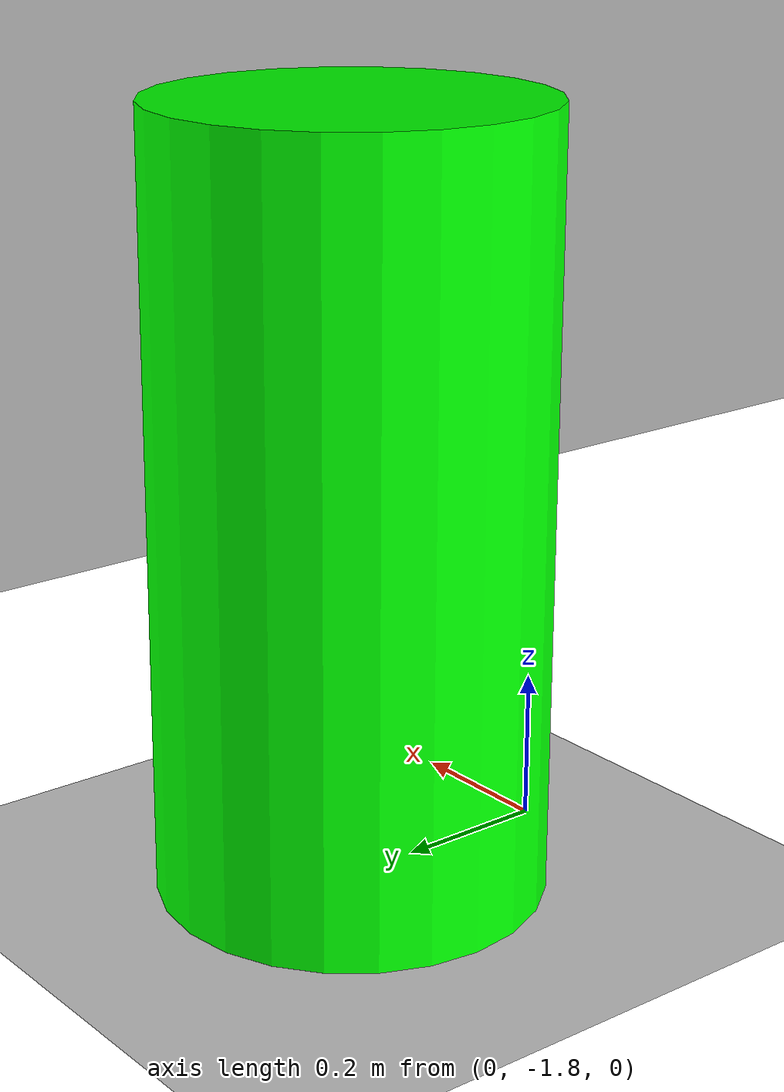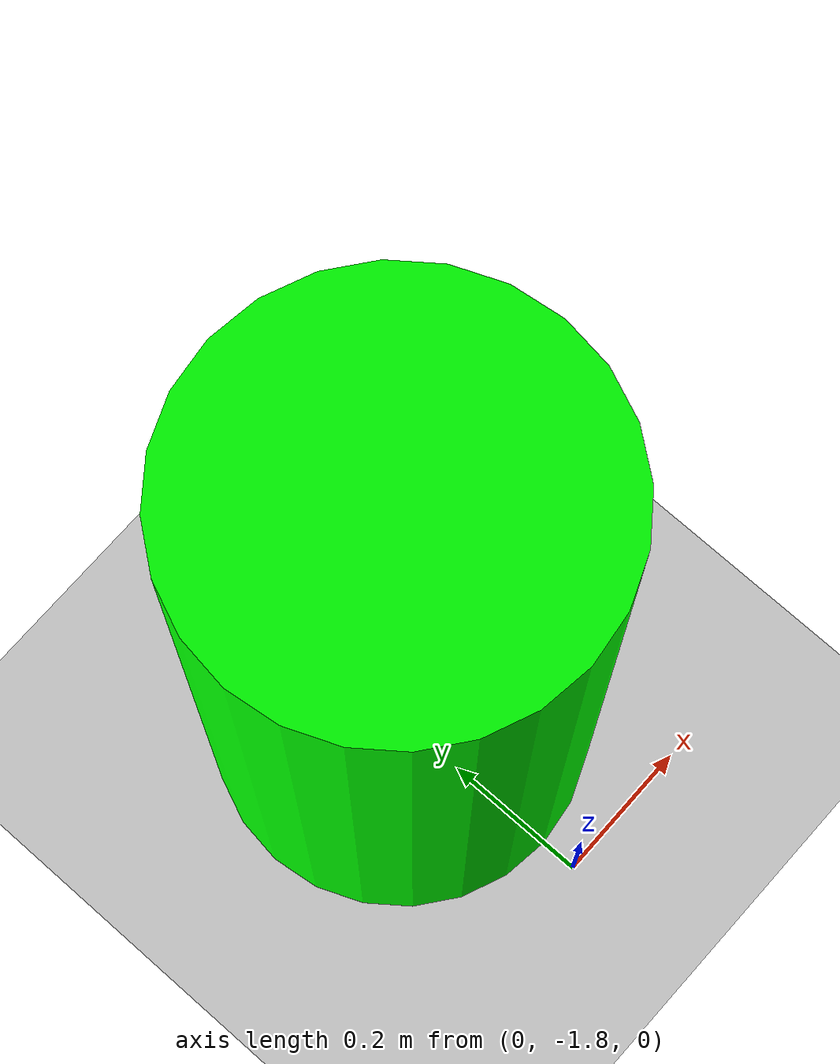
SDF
<?xml version='1.0'?>
<sdf version="1.7">
  <world name="empty_world">
    <light type="directional" name="sun">
      <cast_shadows>true</cast_shadows>
      <pose>0 0 10 0 0 0</pose>
      <diffuse>0.8 0.8 0.8 1</diffuse>
      <specular>0.2 0.2 0.2 1</specular>
      <attenuation>
        <range>1000</range>
        <constant>0.9</constant>
        <linear>0.01</linear>
        <quadratic>0.001</quadratic>
      </attenuation>
      <direction>-0.5 0.1 -0.9</direction>
    </light>

    <!-- Must be included here -->
    <plugin name='gz::sim::systems::Physics'
      filename='libgz-sim-physics-system.so' />
    <plugin name='gz::sim::systems::UserCommands'
      filename='libgz-sim-user-commands-system.so' />
    <plugin name='gz::sim::systems::SceneBroadcaster'
      filename='libgz-sim-scene-broadcaster-system.so' />
    <plugin name='gz::sim::systems::Imu' filename='gz-sim-imu-system' />
    <plugin name='gz::sim::systems::Sensors' filename='gz-sim-sensors-system'>
      <render_engine>ogre2</render_engine>
    </plugin>

    <model name="ground_plane">
      <static>true</static>
      <link name="link">
        <collision name="collision">
          <geometry>
            <plane>
              <normal>0 0 1</normal>
            </plane>
          </geometry>
        </collision>
        <visual name="visual">
          <geometry>
            <plane>
              <normal>0 0 1</normal>
              <size>100 100</size>
            </plane>
          </geometry>
          <material>
            <ambient>0.8 0.8 0.8 1</ambient>
            <diffuse>0.8 0.8 0.8 1</diffuse>
            <specular>0.8 0.8 0.8 1</specular>
          </material>
        </visual>
      </link>
    </model>
    <model name="golisano">
        <pose>0 0 0 0 0 0</pose>
        <self_collide>false</self_collide>
        <!-- BASE_LINK FRAME -->
        <link name="golisano_base">
            <pose>0 0 0 0 0 0</pose>
            <collision name="golisano_collision">
                <pose>-3 -20 0 1.57 0 0</pose>
                <geometry>
                    <mesh>
                        <scale>1245 400 1245</scale>
                        <uri>Golisano3.stl</uri>
                    </mesh>
                </geometry>
            </collision>
            <visual name="golisano_visual">
                <pose>-3 -20 0 1.57 0 0</pose>
                <geometry>
                    <mesh>
                        <scale>1245 400 1245</scale>
                        <uri>Golisano3.dae</uri>
                    </mesh>
                </geometry>
            </visual>
        </link>
        <static>1</static>
    </model>
    <model name="cylinder">
      <pose>0 -1.5 0.5 0 0 0</pose>
      <link name="cylinder_link">
        <inertial>
          <inertia>
            <ixx>0.1458</ixx>
            <ixy>0</ixy>
            <ixz>0</ixz>
            <iyy>0.1458</iyy>
            <iyz>0</iyz>
            <izz>0.125</izz>
          </inertia>
          <mass>1.0</mass>
        </inertial>
        <collision name="cylinder_collision">
          <geometry>
            <cylinder>
              <radius>0.25</radius>
              <length>1.0</length>
            </cylinder>
          </geometry>
        </collision>

        <visual name="cylinder_visual">
          <geometry>
            <cylinder>
              <radius>0.25</radius>
              <length>1.0</length>
            </cylinder>
          </geometry>
          <material>
            <ambient>0 1 0 1</ambient>
            <diffuse>0 1 0 1</diffuse>
            <specular>0 1 0 1</specular>
          </material>
        </visual>
      </link>
    </model>
  </world>
</sdf>
